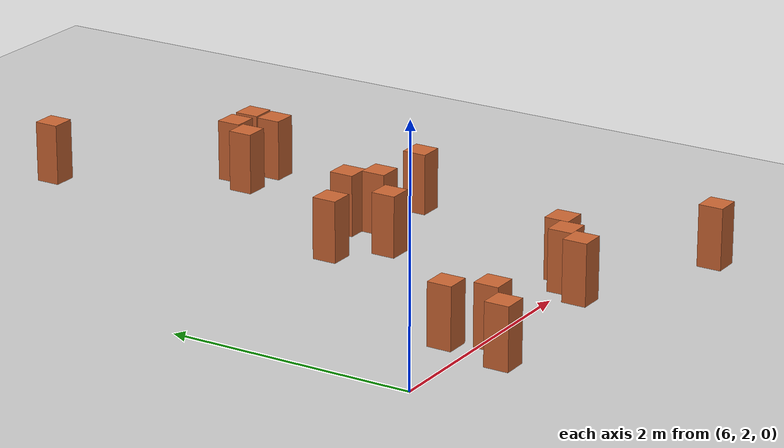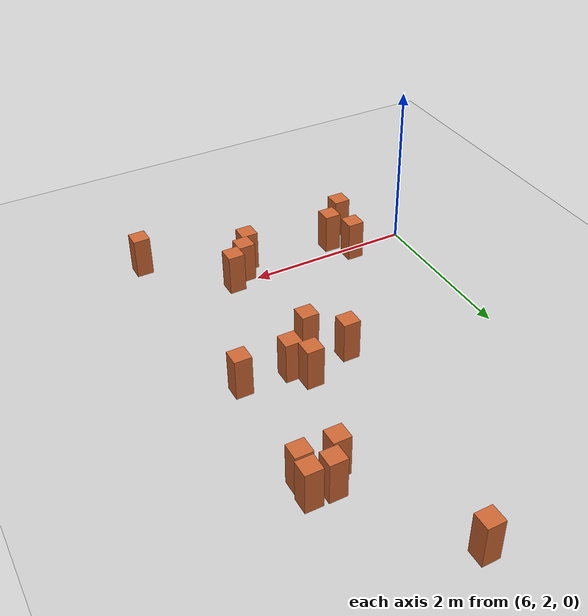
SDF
<sdf version="1.9">
 <world name="default">
  <model name="ground_plane">
   <static>true</static>
   <link name="link">
    <collision name="collision">
     <geometry><plane><normal>0 0 1</normal><size>100 100</size></plane></geometry>
     <surface><friction><ode><mu>100</mu><mu2>50</mu2></ode></friction></surface>
    </collision>
    <visual name="visual">
     <cast_shadows>false</cast_shadows>
     <geometry><plane><normal>0 0 1</normal><size>100 100</size></plane></geometry>
     <material>
      <ambient>0.6 0.6 0.6 1</ambient>
      <diffuse>0.8 0.8 0.8 1</diffuse>
      <specular>0.1 0.1 0.1 1</specular>
     </material>
    </visual>
    <inertial>
     <mass>1</mass>
     <inertia><ixx>1</ixx><ixy>0</ixy><ixz>0</ixz><iyy>1</iyy><iyz>0</iyz><izz>1</izz></inertia>
    </inertial>
   </link>
  </model>
  <model name="wood_cube_10cm_clone_0_clone_4_64">
   <link name="link">
    <pose>0 0 0.05 0 -0 0</pose>
    <inertial>
     <mass>0.51670000000000005</mass>
     <inertia>
      <ixx>0.00086116700000000003</ixx>
      <ixy>0</ixy>
      <ixz>0</ixz>
      <iyy>0.00086116700000000003</iyy>
      <iyz>0</iyz>
      <izz>0.00086116700000000003</izz>
     </inertia>
    </inertial>
    <collision name="collision">
     <geometry><box><size>0.2 0.2 0.5</size></box></geometry>
     <surface>
      <contact>
       <poissons_ratio>0.34699999999999998</poissons_ratio>
       <elastic_modulus>8800000000</elastic_modulus>
       <ode><kp>100000</kp><kd>100</kd><max_vel>100</max_vel><min_depth>0.001</min_depth></ode>
      </contact>
      <friction>
       <torsional>
        <coefficient>1</coefficient>
        <use_patch_radius>false</use_patch_radius>
        <surface_radius>0.01</surface_radius>
       </torsional>
      </friction>
     </surface>
    </collision>
    <visual name="visual">
     <geometry><box><size>0.2 0.2 0.5</size></box></geometry>
     <material>
      <ambient>0.6 0.3 0.1 1</ambient>
      <diffuse>0.8 0.4 0.2 1</diffuse>
      <specular>0.1 0.1 0.1 1</specular>
     </material>
    </visual>
   </link>
   <pose>6.76356 2.16138 0.249999 -0 -0 -0</pose>
   <static>false</static>
  </model>
  <model name="wood_cube_10cm_clone_0_clone_4_65">
   <link name="link">
    <pose>0 0 0.05 0 -0 0</pose>
    <inertial>
     <mass>0.51670000000000005</mass>
     <inertia>
      <ixx>0.00086116700000000003</ixx>
      <ixy>0</ixy>
      <ixz>0</ixz>
      <iyy>0.00086116700000000003</iyy>
      <iyz>0</iyz>
      <izz>0.00086116700000000003</izz>
     </inertia>
    </inertial>
    <collision name="collision">
     <geometry><box><size>0.2 0.2 0.5</size></box></geometry>
     <surface>
      <contact>
       <poissons_ratio>0.34699999999999998</poissons_ratio>
       <elastic_modulus>8800000000</elastic_modulus>
       <ode><kp>100000</kp><kd>100</kd><max_vel>100</max_vel><min_depth>0.001</min_depth></ode>
      </contact>
      <friction>
       <torsional>
        <coefficient>1</coefficient>
        <use_patch_radius>false</use_patch_radius>
        <surface_radius>0.01</surface_radius>
       </torsional>
      </friction>
     </surface>
    </collision>
    <visual name="visual">
     <geometry><box><size>0.2 0.2 0.5</size></box></geometry>
     <material>
      <ambient>0.6 0.3 0.1 1</ambient>
      <diffuse>0.8 0.4 0.2 1</diffuse>
      <specular>0.1 0.1 0.1 1</specular>
     </material>
    </visual>
   </link>
   <pose>6.9259 1.8725 0.249999 -0 -0 -0</pose>
   <static>false</static>
  </model>
  <model name="wood_cube_10cm_clone_0_clone_4_66">
   <link name="link">
    <pose>0 0 0.05 0 -0 0</pose>
    <inertial>
     <mass>0.51670000000000005</mass>
     <inertia>
      <ixx>0.00086116700000000003</ixx>
      <ixy>0</ixy>
      <ixz>0</ixz>
      <iyy>0.00086116700000000003</iyy>
      <iyz>0</iyz>
      <izz>0.00086116700000000003</izz>
     </inertia>
    </inertial>
    <collision name="collision">
     <geometry><box><size>0.2 0.2 0.5</size></box></geometry>
     <surface>
      <contact>
       <poissons_ratio>0.34699999999999998</poissons_ratio>
       <elastic_modulus>8800000000</elastic_modulus>
       <ode><kp>100000</kp><kd>100</kd><max_vel>100</max_vel><min_depth>0.001</min_depth></ode>
      </contact>
      <friction>
       <torsional>
        <coefficient>1</coefficient>
        <use_patch_radius>false</use_patch_radius>
        <surface_radius>0.01</surface_radius>
       </torsional>
      </friction>
     </surface>
    </collision>
    <visual name="visual">
     <geometry><box><size>0.2 0.2 0.5</size></box></geometry>
     <material>
      <ambient>0.6 0.3 0.1 1</ambient>
      <diffuse>0.8 0.4 0.2 1</diffuse>
      <specular>0.1 0.1 0.1 1</specular>
     </material>
    </visual>
   </link>
   <pose>6.65206 1.62743 0.249999 -0 -0 -0</pose>
   <static>false</static>
  </model>
  <model name="wood_cube_10cm_clone_0_clone_4_44_6">
   <link name="link">
    <pose>0 0 0.05 0 -0 0</pose>
    <inertial>
     <mass>0.51670000000000005</mass>
     <inertia>
      <ixx>0.00086116700000000003</ixx>
      <ixy>0</ixy>
      <ixz>0</ixz>
      <iyy>0.00086116700000000003</iyy>
      <iyz>0</iyz>
      <izz>0.00086116700000000003</izz>
     </inertia>
    </inertial>
    <collision name="collision">
     <geometry><box><size>0.2 0.2 0.5</size></box></geometry>
     <surface>
      <contact>
       <poissons_ratio>0.34699999999999998</poissons_ratio>
       <elastic_modulus>8800000000</elastic_modulus>
       <ode><kp>100000</kp><kd>100</kd><max_vel>100</max_vel><min_depth>0.001</min_depth></ode>
      </contact>
      <friction>
       <torsional>
        <coefficient>1</coefficient>
        <use_patch_radius>false</use_patch_radius>
        <surface_radius>0.01</surface_radius>
       </torsional>
      </friction>
     </surface>
    </collision>
    <visual name="visual">
     <geometry><box><size>0.2 0.2 0.5</size></box></geometry>
     <material>
      <ambient>0.6 0.3 0.1 1</ambient>
      <diffuse>0.8 0.4 0.2 1</diffuse>
      <specular>0.1 0.1 0.1 1</specular>
     </material>
    </visual>
   </link>
   <pose>9.19668 1.23915 0.249999 0 -0 0</pose>
   <static>false</static>
  </model>
  <model name="wood_cube_10cm_clone_0_clone_4_44_17">
   <link name="link">
    <pose>0 0 0.05 0 -0 0</pose>
    <inertial>
     <mass>0.51670000000000005</mass>
     <inertia>
      <ixx>0.00086116700000000003</ixx>
      <ixy>0</ixy>
      <ixz>0</ixz>
      <iyy>0.00086116700000000003</iyy>
      <iyz>0</iyz>
      <izz>0.00086116700000000003</izz>
     </inertia>
    </inertial>
    <collision name="collision">
     <geometry><box><size>0.2 0.2 0.5</size></box></geometry>
     <surface>
      <contact>
       <poissons_ratio>0.34699999999999998</poissons_ratio>
       <elastic_modulus>8800000000</elastic_modulus>
       <ode><kp>100000</kp><kd>100</kd><max_vel>100</max_vel><min_depth>0.001</min_depth></ode>
      </contact>
      <friction>
       <torsional>
        <coefficient>1</coefficient>
        <use_patch_radius>false</use_patch_radius>
        <surface_radius>0.01</surface_radius>
       </torsional>
      </friction>
     </surface>
    </collision>
    <visual name="visual">
     <geometry><box><size>0.2 0.2 0.5</size></box></geometry>
     <material>
      <ambient>0.6 0.3 0.1 1</ambient>
      <diffuse>0.8 0.4 0.2 1</diffuse>
      <specular>0.1 0.1 0.1 1</specular>
     </material>
    </visual>
   </link>
   <pose>8.07895 6.64127 0.249999 0 -0 0</pose>
   <static>false</static>
  </model>
  <model name="wood_cube_10cm_clone_0_clone_4_44_46">
   <link name="link">
    <pose>0 0 0.05 0 -0 0</pose>
    <inertial>
     <mass>0.51670000000000005</mass>
     <inertia>
      <ixx>0.00086116700000000003</ixx>
      <ixy>0</ixy>
      <ixz>0</ixz>
      <iyy>0.00086116700000000003</iyy>
      <iyz>0</iyz>
      <izz>0.00086116700000000003</izz>
     </inertia>
    </inertial>
    <collision name="collision">
     <geometry><box><size>0.2 0.2 0.5</size></box></geometry>
     <surface>
      <contact>
       <poissons_ratio>0.34699999999999998</poissons_ratio>
       <elastic_modulus>8800000000</elastic_modulus>
       <ode><kp>100000</kp><kd>100</kd><max_vel>100</max_vel><min_depth>0.001</min_depth></ode>
      </contact>
      <friction>
       <torsional>
        <coefficient>1</coefficient>
        <use_patch_radius>false</use_patch_radius>
        <surface_radius>0.01</surface_radius>
       </torsional>
      </friction>
     </surface>
    </collision>
    <visual name="visual">
     <geometry><box><size>0.2 0.2 0.5</size></box></geometry>
     <material>
      <ambient>0.6 0.3 0.1 1</ambient>
      <diffuse>0.8 0.4 0.2 1</diffuse>
      <specular>0.1 0.1 0.1 1</specular>
     </material>
    </visual>
   </link>
   <pose>8.483 3.78901 0.25 0 0 0.000426</pose>
   <static>false</static>
  </model>
  <model name="wood_cube_10cm_clone_0_clone_4_44_47">
   <link name="link">
    <pose>0 0 0.05 0 -0 0</pose>
    <inertial>
     <mass>0.51670000000000005</mass>
     <inertia>
      <ixx>0.00086116700000000003</ixx>
      <ixy>0</ixy>
      <ixz>0</ixz>
      <iyy>0.00086116700000000003</iyy>
      <iyz>0</iyz>
      <izz>0.00086116700000000003</izz>
     </inertia>
    </inertial>
    <collision name="collision">
     <geometry><box><size>0.2 0.2 0.5</size></box></geometry>
     <surface>
      <contact>
       <poissons_ratio>0.34699999999999998</poissons_ratio>
       <elastic_modulus>8800000000</elastic_modulus>
       <ode><kp>100000</kp><kd>100</kd><max_vel>100</max_vel><min_depth>0.001</min_depth></ode>
      </contact>
      <friction>
       <torsional>
        <coefficient>1</coefficient>
        <use_patch_radius>false</use_patch_radius>
        <surface_radius>0.01</surface_radius>
       </torsional>
      </friction>
     </surface>
    </collision>
    <visual name="visual">
     <geometry><box><size>0.2 0.2 0.5</size></box></geometry>
     <material>
      <ambient>0.6 0.3 0.1 1</ambient>
      <diffuse>0.8 0.4 0.2 1</diffuse>
      <specular>0.1 0.1 0.1 1</specular>
     </material>
    </visual>
   </link>
   <pose>8.33717 3.98896 0.25 -0 -0 0.00031</pose>
   <static>false</static>
  </model>
  <model name="wood_cube_10cm_clone_0_clone_4_44_49">
   <link name="link">
    <pose>0 0 0.05 0 -0 0</pose>
    <inertial>
     <mass>0.51670000000000005</mass>
     <inertia>
      <ixx>0.00086116700000000003</ixx>
      <ixy>0</ixy>
      <ixz>0</ixz>
      <iyy>0.00086116700000000003</iyy>
      <iyz>0</iyz>
      <izz>0.00086116700000000003</izz>
     </inertia>
    </inertial>
    <collision name="collision">
     <geometry><box><size>0.2 0.2 0.5</size></box></geometry>
     <surface>
      <contact>
       <poissons_ratio>0.34699999999999998</poissons_ratio>
       <elastic_modulus>8800000000</elastic_modulus>
       <ode><kp>100000</kp><kd>100</kd><max_vel>100</max_vel><min_depth>0.001</min_depth></ode>
      </contact>
      <friction>
       <torsional>
        <coefficient>1</coefficient>
        <use_patch_radius>false</use_patch_radius>
        <surface_radius>0.01</surface_radius>
       </torsional>
      </friction>
     </surface>
    </collision>
    <visual name="visual">
     <geometry><box><size>0.2 0.2 0.5</size></box></geometry>
     <material>
      <ambient>0.6 0.3 0.1 1</ambient>
      <diffuse>0.8 0.4 0.2 1</diffuse>
      <specular>0.1 0.1 0.1 1</specular>
     </material>
    </visual>
   </link>
   <pose>9.051 3.76305 0.249999 0 -0 0</pose>
   <static>false</static>
  </model>
  <model name="wood_cube_10cm_clone_0_clone_4_44_50">
   <link name="link">
    <pose>0 0 0.05 0 -0 0</pose>
    <inertial>
     <mass>0.51670000000000005</mass>
     <inertia>
      <ixx>0.00086116700000000003</ixx>
      <ixy>0</ixy>
      <ixz>0</ixz>
      <iyy>0.00086116700000000003</iyy>
      <iyz>0</iyz>
      <izz>0.00086116700000000003</izz>
     </inertia>
    </inertial>
    <collision name="collision">
     <geometry><box><size>0.2 0.2 0.5</size></box></geometry>
     <surface>
      <contact>
       <poissons_ratio>0.34699999999999998</poissons_ratio>
       <elastic_modulus>8800000000</elastic_modulus>
       <ode><kp>100000</kp><kd>100</kd><max_vel>100</max_vel><min_depth>0.001</min_depth></ode>
      </contact>
      <friction>
       <torsional>
        <coefficient>1</coefficient>
        <use_patch_radius>false</use_patch_radius>
        <surface_radius>0.01</surface_radius>
       </torsional>
      </friction>
     </surface>
    </collision>
    <visual name="visual">
     <geometry><box><size>0.2 0.2 0.5</size></box></geometry>
     <material>
      <ambient>0.6 0.3 0.1 1</ambient>
      <diffuse>0.8 0.4 0.2 1</diffuse>
      <specular>0.1 0.1 0.1 1</specular>
     </material>
    </visual>
   </link>
   <pose>8.11526 3.47088 0.249999 0 -0 0</pose>
   <static>false</static>
  </model>
  <model name="wood_cube_10cm_clone_0_clone_4_44_51">
   <link name="link">
    <pose>0 0 0.05 0 -0 0</pose>
    <inertial>
     <mass>0.51670000000000005</mass>
     <inertia>
      <ixx>0.00086116700000000003</ixx>
      <ixy>0</ixy>
      <ixz>0</ixz>
      <iyy>0.00086116700000000003</iyy>
      <iyz>0</iyz>
      <izz>0.00086116700000000003</izz>
     </inertia>
    </inertial>
    <collision name="collision">
     <geometry><box><size>0.2 0.2 0.5</size></box></geometry>
     <surface>
      <contact>
       <poissons_ratio>0.34699999999999998</poissons_ratio>
       <elastic_modulus>8800000000</elastic_modulus>
       <ode><kp>100000</kp><kd>100</kd><max_vel>100</max_vel><min_depth>0.001</min_depth></ode>
      </contact>
      <friction>
       <torsional>
        <coefficient>1</coefficient>
        <use_patch_radius>false</use_patch_radius>
        <surface_radius>0.01</surface_radius>
       </torsional>
      </friction>
     </surface>
    </collision>
    <visual name="visual">
     <geometry><box><size>0.2 0.2 0.5</size></box></geometry>
     <material>
      <ambient>0.6 0.3 0.1 1</ambient>
      <diffuse>0.8 0.4 0.2 1</diffuse>
      <specular>0.1 0.1 0.1 1</specular>
     </material>
    </visual>
   </link>
   <pose>7.78625 3.79246 0.249999 -0 -0 -0</pose>
   <static>false</static>
  </model>
  <model name="wood_cube_10cm_clone_0_clone_4_44_2_1">
   <link name="link">
    <pose>0 0 0.05 0 -0 0</pose>
    <inertial>
     <mass>0.51670000000000005</mass>
     <inertia>
      <ixx>0.00086116700000000003</ixx>
      <ixy>0</ixy>
      <ixz>0</ixz>
      <iyy>0.00086116700000000003</iyy>
      <iyz>0</iyz>
      <izz>0.00086116700000000003</izz>
     </inertia>
    </inertial>
    <collision name="collision">
     <geometry><box><size>0.2 0.2 0.5</size></box></geometry>
     <surface>
      <contact>
       <poissons_ratio>0.34699999999999998</poissons_ratio>
       <elastic_modulus>8800000000</elastic_modulus>
       <ode><kp>100000</kp><kd>100</kd><max_vel>100</max_vel><min_depth>0.001</min_depth></ode>
      </contact>
      <friction>
       <torsional>
        <coefficient>1</coefficient>
        <use_patch_radius>false</use_patch_radius>
        <surface_radius>0.01</surface_radius>
       </torsional>
      </friction>
     </surface>
    </collision>
    <visual name="visual">
     <geometry><box><size>0.2 0.2 0.5</size></box></geometry>
     <material>
      <ambient>0.6 0.3 0.1 1</ambient>
      <diffuse>0.8 0.4 0.2 1</diffuse>
      <specular>0.1 0.1 0.1 1</specular>
     </material>
    </visual>
   </link>
   <pose>8.01322 1.75407 0.250004 4e-05 -1e-06 -0.002877</pose>
   <static>false</static>
  </model>
  <model name="wood_cube_10cm_clone_0_clone_4_44_2_2">
   <link name="link">
    <pose>0 0 0.05 0 -0 0</pose>
    <inertial>
     <mass>0.51670000000000005</mass>
     <inertia>
      <ixx>0.00086116700000000003</ixx>
      <ixy>0</ixy>
      <ixz>0</ixz>
      <iyy>0.00086116700000000003</iyy>
      <iyz>0</iyz>
      <izz>0.00086116700000000003</izz>
     </inertia>
    </inertial>
    <collision name="collision">
     <geometry><box><size>0.2 0.2 0.5</size></box></geometry>
     <surface>
      <contact>
       <poissons_ratio>0.34699999999999998</poissons_ratio>
       <elastic_modulus>8800000000</elastic_modulus>
       <ode><kp>100000</kp><kd>100</kd><max_vel>100</max_vel><min_depth>0.001</min_depth></ode>
      </contact>
      <friction>
       <torsional>
        <coefficient>1</coefficient>
        <use_patch_radius>false</use_patch_radius>
        <surface_radius>0.01</surface_radius>
       </torsional>
      </friction>
     </surface>
    </collision>
    <visual name="visual">
     <geometry><box><size>0.2 0.2 0.5</size></box></geometry>
     <material>
      <ambient>0.6 0.3 0.1 1</ambient>
      <diffuse>0.8 0.4 0.2 1</diffuse>
      <specular>0.1 0.1 0.1 1</specular>
     </material>
    </visual>
   </link>
   <pose>8.34566 2.09199 0.25 -0 0 0.007858</pose>
   <static>false</static>
  </model>
  <model name="wood_cube_10cm_clone_0_clone_4_44_2_3">
   <link name="link">
    <pose>0 0 0.05 0 -0 0</pose>
    <inertial>
     <mass>0.51670000000000005</mass>
     <inertia>
      <ixx>0.00086116700000000003</ixx>
      <ixy>0</ixy>
      <ixz>0</ixz>
      <iyy>0.00086116700000000003</iyy>
      <iyz>0</iyz>
      <izz>0.00086116700000000003</izz>
     </inertia>
    </inertial>
    <collision name="collision">
     <geometry><box><size>0.2 0.2 0.5</size></box></geometry>
     <surface>
      <contact>
       <poissons_ratio>0.34699999999999998</poissons_ratio>
       <elastic_modulus>8800000000</elastic_modulus>
       <ode><kp>100000</kp><kd>100</kd><max_vel>100</max_vel><min_depth>0.001</min_depth></ode>
      </contact>
      <friction>
       <torsional>
        <coefficient>1</coefficient>
        <use_patch_radius>false</use_patch_radius>
        <surface_radius>0.01</surface_radius>
       </torsional>
      </friction>
     </surface>
    </collision>
    <visual name="visual">
     <geometry><box><size>0.2 0.2 0.5</size></box></geometry>
     <material>
      <ambient>0.6 0.3 0.1 1</ambient>
      <diffuse>0.8 0.4 0.2 1</diffuse>
      <specular>0.1 0.1 0.1 1</specular>
     </material>
    </visual>
   </link>
   <pose>8.14721 1.95396 0.25 -1e-06 0 0.020841</pose>
   <static>false</static>
  </model>
  <model name="wood_cube_10cm_clone_0_clone_4_44_2_10">
   <link name="link">
    <pose>0 0 0.05 0 -0 0</pose>
    <inertial>
     <mass>0.51670000000000005</mass>
     <inertia>
      <ixx>0.00086116700000000003</ixx>
      <ixy>0</ixy>
      <ixz>0</ixz>
      <iyy>0.00086116700000000003</iyy>
      <iyz>0</iyz>
      <izz>0.00086116700000000003</izz>
     </inertia>
    </inertial>
    <collision name="collision">
     <geometry><box><size>0.2 0.2 0.5</size></box></geometry>
     <surface>
      <contact>
       <poissons_ratio>0.34699999999999998</poissons_ratio>
       <elastic_modulus>8800000000</elastic_modulus>
       <ode><kp>100000</kp><kd>100</kd><max_vel>100</max_vel><min_depth>0.001</min_depth></ode>
      </contact>
      <friction>
       <torsional>
        <coefficient>1</coefficient>
        <use_patch_radius>false</use_patch_radius>
        <surface_radius>0.01</surface_radius>
       </torsional>
      </friction>
     </surface>
    </collision>
    <visual name="visual">
     <geometry><box><size>0.2 0.2 0.5</size></box></geometry>
     <material>
      <ambient>0.6 0.3 0.1 1</ambient>
      <diffuse>0.8 0.4 0.2 1</diffuse>
      <specular>0.1 0.1 0.1 1</specular>
     </material>
    </visual>
   </link>
   <pose>9.13527 5.40792 0.249999 0 -0 0</pose>
   <static>false</static>
  </model>
  <model name="wood_cube_10cm_clone_0_clone_4_44_2_11">
   <link name="link">
    <pose>0 0 0.05 0 -0 0</pose>
    <inertial>
     <mass>0.51670000000000005</mass>
     <inertia>
      <ixx>0.00086116700000000003</ixx>
      <ixy>0</ixy>
      <ixz>0</ixz>
      <iyy>0.00086116700000000003</iyy>
      <iyz>0</iyz>
      <izz>0.00086116700000000003</izz>
     </inertia>
    </inertial>
    <collision name="collision">
     <geometry><box><size>0.2 0.2 0.5</size></box></geometry>
     <surface>
      <contact>
       <poissons_ratio>0.34699999999999998</poissons_ratio>
       <elastic_modulus>8800000000</elastic_modulus>
       <ode><kp>100000</kp><kd>100</kd><max_vel>100</max_vel><min_depth>0.001</min_depth></ode>
      </contact>
      <friction>
       <torsional>
        <coefficient>1</coefficient>
        <use_patch_radius>false</use_patch_radius>
        <surface_radius>0.01</surface_radius>
       </torsional>
      </friction>
     </surface>
    </collision>
    <visual name="visual">
     <geometry><box><size>0.2 0.2 0.5</size></box></geometry>
     <material>
      <ambient>0.6 0.3 0.1 1</ambient>
      <diffuse>0.8 0.4 0.2 1</diffuse>
      <specular>0.1 0.1 0.1 1</specular>
     </material>
    </visual>
   </link>
   <pose>8.88491 5.41334 0.249999 0 -0 0</pose>
   <static>false</static>
  </model>
  <model name="wood_cube_10cm_clone_0_clone_4_44_2_12">
   <link name="link">
    <pose>0 0 0.05 0 -0 0</pose>
    <inertial>
     <mass>0.51670000000000005</mass>
     <inertia>
      <ixx>0.00086116700000000003</ixx>
      <ixy>0</ixy>
      <ixz>0</ixz>
      <iyy>0.00086116700000000003</iyy>
      <iyz>0</iyz>
      <izz>0.00086116700000000003</izz>
     </inertia>
    </inertial>
    <collision name="collision">
     <geometry><box><size>0.2 0.2 0.5</size></box></geometry>
     <surface>
      <contact>
       <poissons_ratio>0.34699999999999998</poissons_ratio>
       <elastic_modulus>8800000000</elastic_modulus>
       <ode><kp>100000</kp><kd>100</kd><max_vel>100</max_vel><min_depth>0.001</min_depth></ode>
      </contact>
      <friction>
       <torsional>
        <coefficient>1</coefficient>
        <use_patch_radius>false</use_patch_radius>
        <surface_radius>0.01</surface_radius>
       </torsional>
      </friction>
     </surface>
    </collision>
    <visual name="visual">
     <geometry><box><size>0.2 0.2 0.5</size></box></geometry>
     <material>
      <ambient>0.6 0.3 0.1 1</ambient>
      <diffuse>0.8 0.4 0.2 1</diffuse>
      <specular>0.1 0.1 0.1 1</specular>
     </material>
    </visual>
   </link>
   <pose>9.11437 5.18468 0.249999 0 -0 0</pose>
   <static>false</static>
  </model>
  <model name="wood_cube_10cm_clone_0_clone_4_44_2_13">
   <link name="link">
    <pose>0 0 0.05 0 -0 0</pose>
    <inertial>
     <mass>0.51670000000000005</mass>
     <inertia>
      <ixx>0.00086116700000000003</ixx>
      <ixy>0</ixy>
      <ixz>0</ixz>
      <iyy>0.00086116700000000003</iyy>
      <iyz>0</iyz>
      <izz>0.00086116700000000003</izz>
     </inertia>
    </inertial>
    <collision name="collision">
     <geometry><box><size>0.2 0.2 0.5</size></box></geometry>
     <surface>
      <contact>
       <poissons_ratio>0.34699999999999998</poissons_ratio>
       <elastic_modulus>8800000000</elastic_modulus>
       <ode><kp>100000</kp><kd>100</kd><max_vel>100</max_vel><min_depth>0.001</min_depth></ode>
      </contact>
      <friction>
       <torsional>
        <coefficient>1</coefficient>
        <use_patch_radius>false</use_patch_radius>
        <surface_radius>0.01</surface_radius>
       </torsional>
      </friction>
     </surface>
    </collision>
    <visual name="visual">
     <geometry><box><size>0.2 0.2 0.5</size></box></geometry>
     <material>
      <ambient>0.6 0.3 0.1 1</ambient>
      <diffuse>0.8 0.4 0.2 1</diffuse>
      <specular>0.1 0.1 0.1 1</specular>
     </material>
    </visual>
   </link>
   <pose>8.72084 5.19434 0.249999 0 -0 0</pose>
   <static>false</static>
  </model>
 </world>
</sdf>
